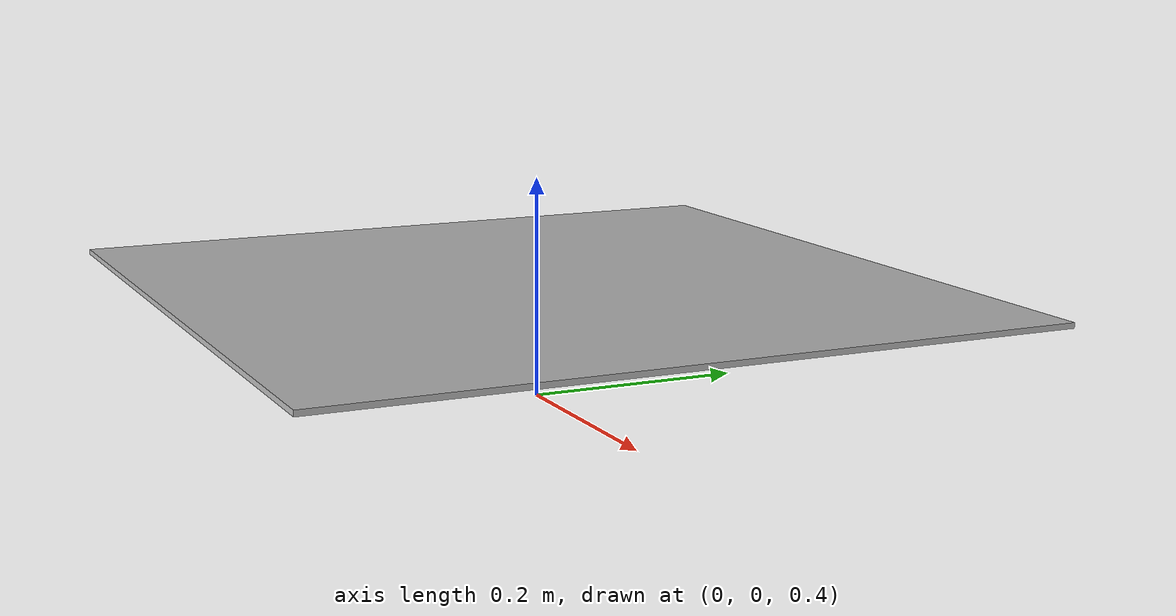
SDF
<?xml version="1.0" ?>
<sdf version="1.5">
  <model name="ArUco 6X6 50 No.1">
    <pose>0 0 0.5 0 0 0</pose>
    <static>true</static>
    <link name="link">
      <inertial>
        <mass>0.1</mass>
        <inertia>
          <ixx>1</ixx>
          <ixy>0</ixy>
          <ixz>0</ixz>
          <iyy>1</iyy>
          <iyz>0</iyz>
          <izz>1</izz>
        </inertia>
      </inertial>
      <collision name="collision">
        <pose>0 0 0.0025 0 0 0</pose>
        <geometry>
          <box>
            <size>0.5833333333333334 0.5833333333333334 0.005</size>
          </box>
        </geometry>
        <surface>
          <contact>
            <ode>
              <max_vel>0.1</max_vel>
              <min_depth>0.001</min_depth>
            </ode>
          </contact>
        </surface>
      </collision>
      <visual name="visual">
        <geometry>
          <mesh>
            <uri>model://ArUco_6X6_50_1/collada/marker.dae</uri>
          </mesh>
        </geometry>
      </visual>
    </link>
  </model>
</sdf>
